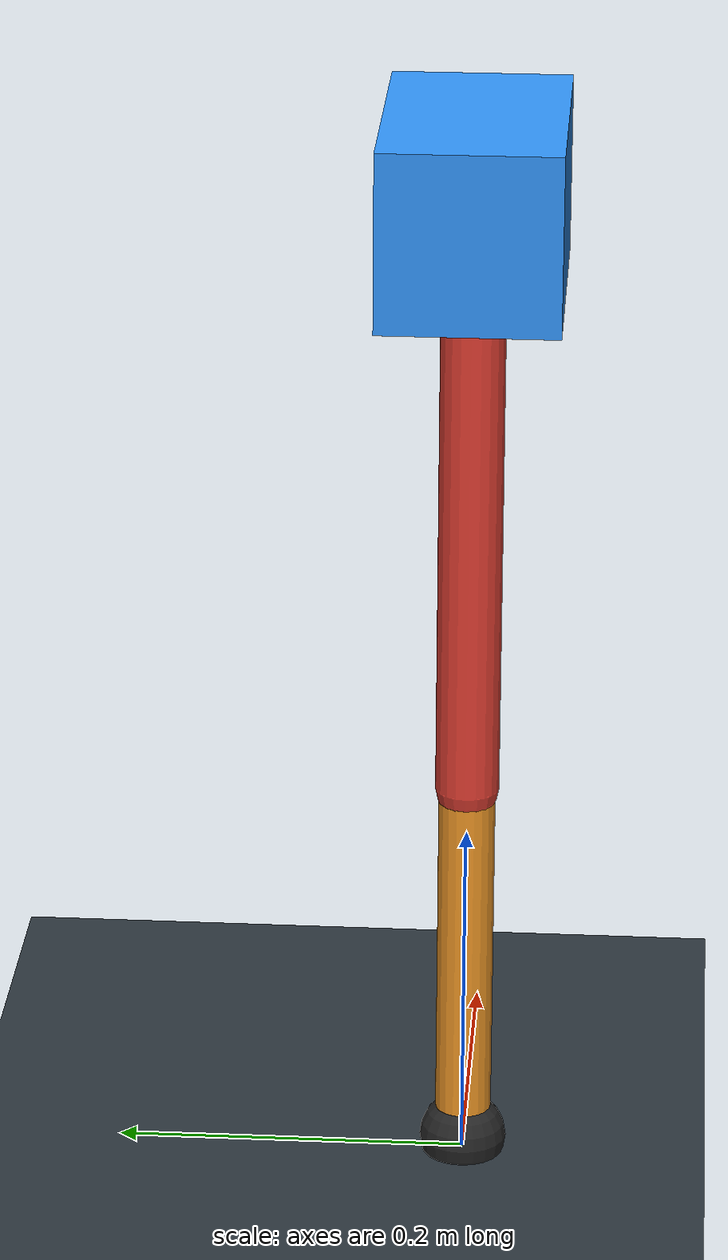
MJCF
<mujoco model="single_axis_two_bar">
  <compiler angle="radian" inertiafromgeom="true"/>
  <option timestep="0.001" integrator="implicitfast" gravity="0 0 -9.81"/>
  <default>
    <joint damping="0.08"/>
    <geom friction="1.2 0.01 0.0001" condim="3"/>
  </default>
  <worldbody>
    <geom name="floor" type="plane" size="5 5 0.1" rgba="0.18 0.22 0.25 1"/>
    <body name="carriage" pos="0 0 0.5727439059521476">
      <joint name="pole_slide" type="slide" axis="0 0 1"/>
      <geom name="payload" type="box" size="0.08 0.05 0.05" mass="3.372866468474311" rgba="0.2 0.6 1 1"/>
      <body name="thigh" pos="0 0 0">
        <joint name="hip" type="hinge" axis="0 1 0"/>
        <geom name="thigh_link" type="capsule" fromto="0 0 0 0 0 -0.34499799616243254" size="0.018" mass="0.24581563101204174" rgba="0.9 0.25 0.2 1"/>
        <body name="shank" pos="0 0 -0.34499799616243254">
          <joint name="knee" type="hinge" axis="0 1 0"/>
          <geom name="shank_link" type="capsule" fromto="0 0 0 0 0 -0.21968644296349277" size="0.016" mass="0.15652949351171422" rgba="0.95 0.6 0.15 1"/>
          <geom name="foot" type="sphere" pos="0 0 -0.21968644296349277" size="0.025" mass="0.03" rgba="0.15 0.15 0.15 1"/>
          <site name="toe" pos="0 0 -0.21968644296349277" size="0.008"/>
        </body>
      </body>
    </body>
  </worldbody>
  <actuator>
    <motor name="hip_motor" joint="hip" ctrlrange="-62.952059178511725 62.952059178511725"/>
    <motor name="knee_motor" joint="knee" ctrlrange="-44.575937244773804 44.575937244773804"/>
  </actuator>
</mujoco>
